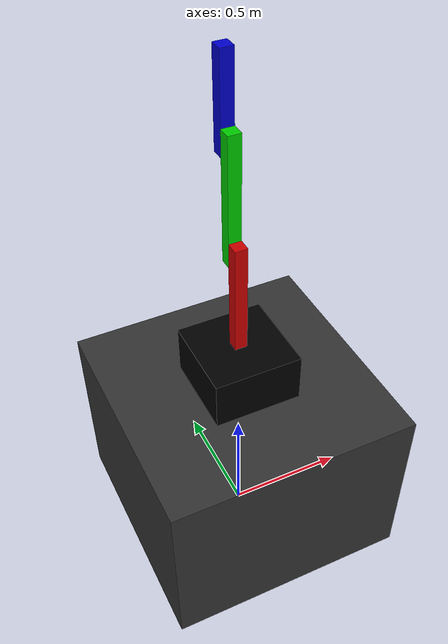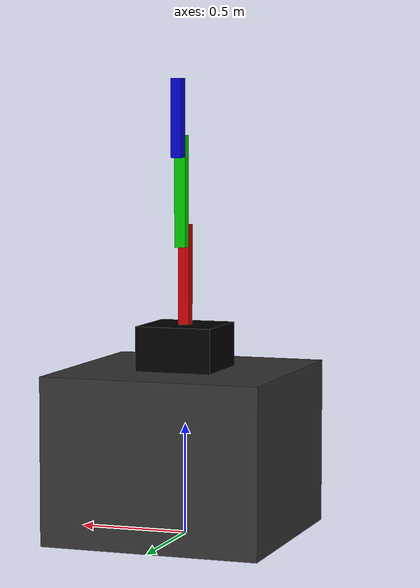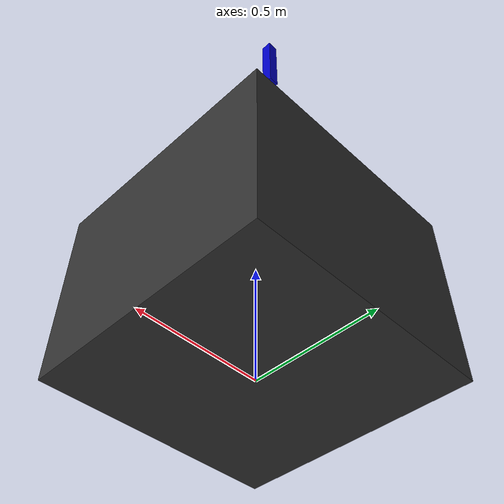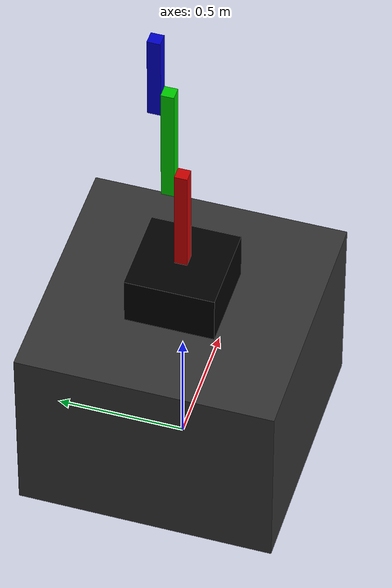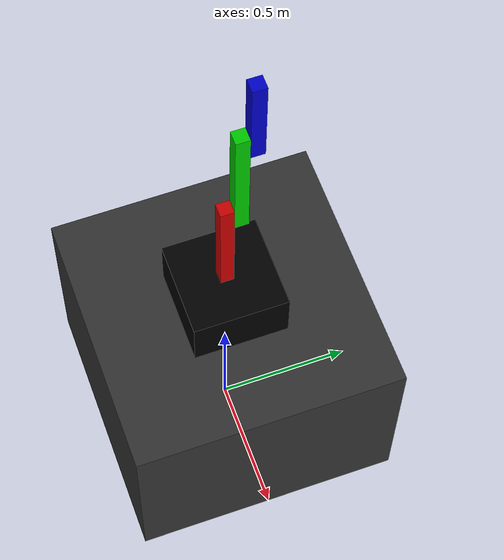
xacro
<?xml version="1.0"?>
<!-- Revolute-Revolute Manipulator -->
<!--
Copied and modified from ROS2 example -
https://github.com/ros-controls/ros2_control_demos/blob/master/example_1/description/urdf/rrbot.urdf.xacro
-->
<robot xmlns:xacro="http://www.ros.org/wiki/xacro" name="robot_3r">
  <xacro:arg name="prefix" default="" />

  <!-- Import RRBot macro -->
  <xacro:include filename="$(find robot_3r_description)/urdf/robot_3r_macro.urdf.xacro" />

  <!-- Import Rviz colors -->
  <xacro:include filename="$(find robot_3r_description)/urdf/robot_3r.materials.xacro" />

  <!-- Import RRBot ros2_control description -->
  <xacro:include filename="$(find robot_3r_description)/urdf/robot_3r.ros2_control.xacro" />

  <!-- Used for fixing robot -->
  <link name="world"/>

  <xacro:robot_3r parent="world" prefix="$(arg prefix)">
    <origin xyz="0 0 0" rpy="0 0 0" />
  </xacro:robot_3r>

  <xacro:threedofbot_fake_hardware />

  <gazebo>
    <plugin
    filename="libgz_ros2_control-system.so"
    name="gz_ros2_control::GazeboSimROS2ControlPlugin">
    <parameters>
    $(find robot_3r_description)/config/controllers.yaml
    </parameters>
    </plugin>
  </gazebo>

  <gazebo reference="base_link">
    <self_collide>true</self_collide>
  </gazebo>

  <gazebo reference="link1">
    <self_collide>true</self_collide>
  </gazebo>

  <gazebo reference="link2">
    <self_collide>true</self_collide>
  </gazebo>

  <gazebo reference="link3">
    <self_collide>true</self_collide>
  </gazebo>

</robot>

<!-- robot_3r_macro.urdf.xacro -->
<robot xmlns:xacro="http://www.ros.org/wiki/xacro">

  <xacro:macro name="robot_3r" params="parent prefix *origin">

  <!-- Robot dimensions -->
  <xacro:property name="mass" value="2" />            <!-- arbitrary value for mass -->
  <xacro:property name="base_mass" value="15" />      <!-- arbitrary value for mass -->
  <xacro:property name="base_width" value="1" />      <!-- Square dimensions (widthxwidth) of beams -->
  <xacro:property name="base_width_coll" value="1" /> <!-- Collision width -->
  <xacro:property name="link0_width" value="0.35" /> <!-- width of Link 1's static base -->
  <xacro:property name="link0_height" value="0.2" /> <!-- height of Link 1's static base -->
  <xacro:property name="width" value="0.05" />       <!-- Square dimensions (widthxwidth) of beams -->
  <xacro:property name="height1" value="0.755" />    <!-- Link 1 -->
  <xacro:property name="height1_coll" value="0.755" /> <!-- Link 1 -->
  <xacro:property name="height2" value="0.5" />      <!-- Link 2 -->
  <xacro:property name="height3" value="0.5" />      <!-- Link 3 -->
  <xacro:property name="height4" value="0.35" />     <!-- Link 4 -->
  <xacro:property name="camera_link" value="0.05" /> <!-- Size of square 'camera' box -->
  <xacro:property name="axel_offset" value="0.05" /> <!-- Space btw top of beam and the each joint -->

  <!-- Base Link -->
  <link name="${prefix}base_link">
    <visual>
      <origin xyz="0 0 ${height1/2}" rpy="0 0 0"/>
      <geometry>
        <box size="${base_width} ${base_width} ${height1}"/>
      </geometry>
      <material name="grey"/>
    </visual>
    <collision>
      <origin xyz="0 0 ${height1/2}" rpy="0 0 0"/>
      <geometry>
        <box size="${base_width_coll} ${base_width_coll} ${height1_coll}"/>
      </geometry>
    </collision>
    <inertial>
      <origin xyz="0 0 ${height1/2}" rpy="0 0 0"/>
      <mass value="${base_mass}"/>
      <inertia
        ixx="${base_mass / 12.0 * (base_width*base_width + height1*height1)}" ixy="0.0" ixz="0.0"
        iyy="${base_mass / 12.0 * (height1*height1 + base_width*base_width)}" iyz="0.0"
        izz="${base_mass / 12.0 * (base_width*base_width + base_width*base_width)}"/>
    </inertial>
  </link>

  <!-- Dummy Link -->
  <link name="${prefix}link0">
    <visual>
      <origin xyz="0 0 ${link0_height/2}" rpy="0 0 0"/>
      <geometry>
        <box size="${link0_width} ${link0_width} ${link0_height}"/>
      </geometry>
      <material name="black"/>
    </visual>
    <collision>
      <origin xyz="0 0 ${link0_height/2}" rpy="0 0 0"/>
      <geometry>
        <box size="${link0_width} ${link0_width} ${link0_height}"/>
      </geometry>
    </collision>
    <inertial>
      <origin xyz="0 0 ${link0_height/2}" rpy="0 0 0"/>
      <mass value="${3.5 * mass}"/>
      <inertia
        ixx="${mass / 12.0 * (link0_width*link0_width + link0_height*link0_height)}" ixy="0.0" ixz="0.0"
        iyy="${mass / 12.0 * (link0_height*link0_height + link0_width*link0_width)}" iyz="0.0"
        izz="${mass / 12.0 * (link0_width*link0_width + link0_width*link0_width)}"/>
    </inertial>
  </link>

  <!-- Link 1 -->
  <link name="${prefix}link1">
    <visual>
      <origin xyz="0 0 ${height2/2 - axel_offset}" rpy="0 0 0"/>
      <geometry>
        <box size="${width} ${width} ${height2}"/>
      </geometry>
      <material name="red"/>
    </visual>
    <collision>
      <origin xyz="0 0 ${height2/2 - axel_offset}" rpy="0 0 0"/>
      <geometry>
        <box size="${width} ${width} ${height2}"/>
      </geometry>
    </collision>
    <inertial>
      <origin xyz="0 0 ${height2/2 - axel_offset}" rpy="0 0 0"/>
      <mass value="${mass}"/>
      <inertia
        ixx="${mass / 12.0 * (width*width + height2*height2)}" ixy="0.0" ixz="0.0"
        iyy="${mass / 12.0 * (height2*height2 + width*width)}" iyz="0.0"
        izz="${mass / 12.0 * (width*width + width*width)}"/>
    </inertial>
  </link>

  <!-- Link 2 -->
  <link name="${prefix}link2">
    <visual>
      <origin xyz="0 0 ${height3/2 - axel_offset}" rpy="0 0 0"/>
      <geometry>
        <box size="${width} ${width} ${height3}"/>
      </geometry>
      <material name="green"/>
    </visual>
    <collision>
      <origin xyz="0 0 ${height3/2 - axel_offset}" rpy="0 0 0"/>
      <geometry>
        <box size="${width} ${width} ${height3}"/>
      </geometry>
    </collision>
    <inertial>
      <origin xyz="0 0 ${height3/2 - axel_offset}" rpy="0 0 0"/>
      <mass value="${mass}"/>
      <inertia
        ixx="${mass / 12.0 * (width*width + height3*height3)}" ixy="0.0" ixz="0.0"
        iyy="${mass / 12.0 * (height3*height3 + width*width)}" iyz="0.0"
        izz="${mass / 12.0 * (width*width + width*width)}"/>
      </inertial>
  </link>

  <!-- Link 3 -->
  <link name="${prefix}link3">
    <visual>
      <origin xyz="0 0 ${height4/2 - axel_offset}" rpy="0 0 0"/>
      <geometry>
        <box size="${width} ${width} ${height4}"/>
      </geometry>
      <material name="blue"/>
    </visual>
    <collision>
      <origin xyz="0 0 ${height4/2 - axel_offset}" rpy="0 0 0"/>
      <geometry>
        <box size="${width} ${width} ${height4}"/>
      </geometry>
    </collision>
    <inertial>
      <origin xyz="0 0 ${height4/2 - axel_offset}" rpy="0 0 0"/>
      <mass value="${mass}"/>
      <inertia
        ixx="${mass / 12.0 * (width*width + height4*height4)}" ixy="0.0" ixz="0.0"
        iyy="${mass / 12.0 * (height4*height4 + width*width)}" iyz="0.0"
        izz="${mass / 12.0 * (width*width + width*width)}"/>
      </inertial>
  </link>

  <!-- Tool Link -->
  <link name="${prefix}tool_link">
    <inertial>
      <mass value="0.0001"/>
      <inertia
      ixx="0.001" ixy="0.0" ixz="0.0"
      iyy="0.001" iyz="0.0"
      izz="0.001"/>
    </inertial>
  </link>

  <!-- Joints -->
  <joint name="${prefix}base_joint" type="fixed">
    <xacro:insert_block name="origin" />
    <parent link="${parent}"/>
    <child link="${prefix}base_link" />
  </joint>

  <joint name="${prefix}dummy_joint" type="fixed">
    <parent link="${prefix}base_link"/>
    <child link="${prefix}link0"/>
    <origin xyz="0 0 ${height1}" rpy="0 0 0"/>
  </joint>

  <joint name="${prefix}joint1" type="revolute">
    <parent link="${prefix}link0"/>
    <child link="${prefix}link1"/>
    <origin xyz="0 0 ${link0_height}" rpy="0 0 0"/>
    <axis xyz="0 0 1"/>
    <limit lower="-3.14" upper="3.14" effort="10" velocity="1.25"/>
  </joint>

  <joint name="${prefix}joint2" type="revolute">
    <parent link="${prefix}link1"/>
    <child link="${prefix}link2"/>
    <origin xyz="0 ${width} ${height2 - axel_offset*2}" rpy="0 0 0"/>
    <axis xyz="0 1 0"/>
    <dynamics damping="0.7"/>
    <limit lower="-3.14" upper="3.14" effort="10" velocity="1.25"/>
  </joint>

  <joint name="${prefix}joint3" type="revolute">
    <parent link="${prefix}link2"/>
    <child link="${prefix}link3"/>
    <origin xyz="0 ${width} ${height3 - axel_offset*2}" rpy="0 0 0"/>
    <axis xyz="0 1 0"/>
    <dynamics damping="0.7"/>
    <limit lower="-3.14" upper="3.14" effort="10" velocity="1.25"/>
  </joint>

  <joint name="${prefix}tool_joint" type="fixed">
    <origin xyz="0 0 ${height4 - axel_offset}" rpy="0 0 0" />
    <parent link="${prefix}link3"/>
    <child link="${prefix}tool_link" />
  </joint>

  <transmission name="joint1_trans">
    <type>transmission_interface/SimpleTransmission</type>
    <joint name="joint1">
      <hardwareInterface>hardware_interface/PositionJointInterface</hardwareInterface>
    </joint>
    <actuator name="motor1">
      <hardwareInterface>hardware_interface/PositionJointInterface</hardwareInterface>
      <mechanicalReduction>1</mechanicalReduction>
    </actuator>
  </transmission>

  <transmission name="joint2_trans">
    <type>transmission_interface/SimpleTransmission</type>
    <joint name="joint2">
      <hardwareInterface>hardware_interface/PositionJointInterface</hardwareInterface>
    </joint>
    <actuator name="motor2">
      <hardwareInterface>hardware_interface/PositionJointInterface</hardwareInterface>
      <mechanicalReduction>1</mechanicalReduction>
    </actuator>
  </transmission>

  <transmission name="joint3_trans">
    <type>transmission_interface/SimpleTransmission</type>
    <joint name="joint3">
      <hardwareInterface>hardware_interface/PositionJointInterface</hardwareInterface>
    </joint>
    <actuator name="motor3">
      <hardwareInterface>hardware_interface/PositionJointInterface</hardwareInterface>
      <mechanicalReduction>1</mechanicalReduction>
    </actuator>
  </transmission>

  </xacro:macro>

</robot>

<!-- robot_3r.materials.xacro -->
<!--
Copied from ROS2 example -
https://github.com/ros-controls/ros2_control_demos/blob/master/ros2_control_demo_description/rrbot/urdf/rrbot.materials.xacro
-->
<robot>

  <material name="black">
    <color rgba="0.0 0.0 0.0 1.0"/>
  </material>

  <material name="blue">
    <color rgba="0.0 0.0 0.8 1.0"/>
  </material>

  <material name="green">
    <color rgba="0.0 0.8 0.0 1.0"/>
  </material>

  <material name="grey">
    <color rgba="0.2 0.2 0.2 1.0"/>
  </material>

  <material name="orange">
    <color rgba="${255/255} ${108/255} ${10/255} 1.0"/>
  </material>

  <material name="brown">
    <color rgba="${222/255} ${207/255} ${195/255} 1.0"/>
  </material>

  <material name="red">
    <color rgba="0.8 0.0 0.0 1.0"/>
  </material>

  <material name="yellow">
    <color rgba="1.0 1.0 0.0 1.0"/>
  </material>

  <material name="white">
    <color rgba="1.0 1.0 1.0 1.0"/>
  </material>

</robot>

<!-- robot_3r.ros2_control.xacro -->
<robot xmlns:xacro="http://www.ros.org/wiki/xacro">

<!-- Properties -->
  <xacro:property name="default_initial_positions_file" value="$(find robot_3r_description)/config/initial_positions.yaml"/>

  <xacro:macro name="threedofbot_fake_hardware" params=
  "name:=threedofbot_fake_system
  plugin:=gz_ros2_control/GazeboSimSystem
  initial_positions_file:=${default_initial_positions_file}
  ">

    <xacro:property name="initial_positions" value="${xacro.load_yaml(initial_positions_file)['initial_positions']['robot_3r']}"/>

  <ros2_control name="${name}" type="system">
    <hardware>
      <plugin>${plugin}</plugin>
    </hardware>

    <!-- Joints -->
    <joint name="joint1">
      <command_interface name="position"/>
      <state_interface name="position">
          <param name="initial_value">${initial_positions['joint1']}</param>
        </state_interface>
      <state_interface name="velocity"/>
    </joint>

    <joint name="joint2">
      <command_interface name="position"/>
      <state_interface name="position">
        <param name="initial_value">${initial_positions['joint2']}</param>
      </state_interface>
      <state_interface name="velocity"/>
    </joint>

    <joint name="joint3">
      <command_interface name="position"/>
      <state_interface name="position">
        <param name="initial_value">${initial_positions['joint3']}</param>
      </state_interface>
      <state_interface name="velocity"/>
    </joint>
  </ros2_control>
</xacro:macro>

</robot>
